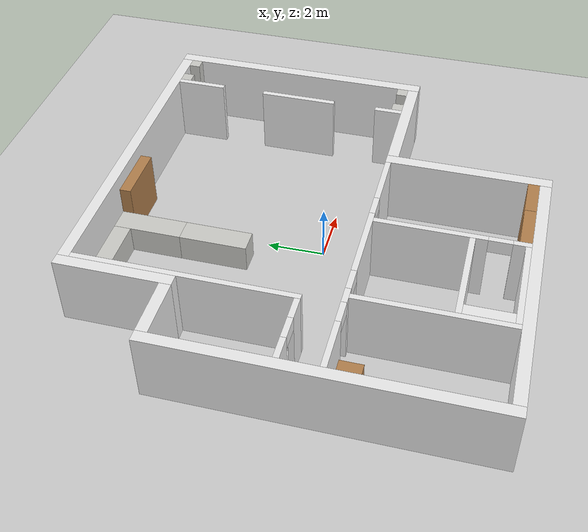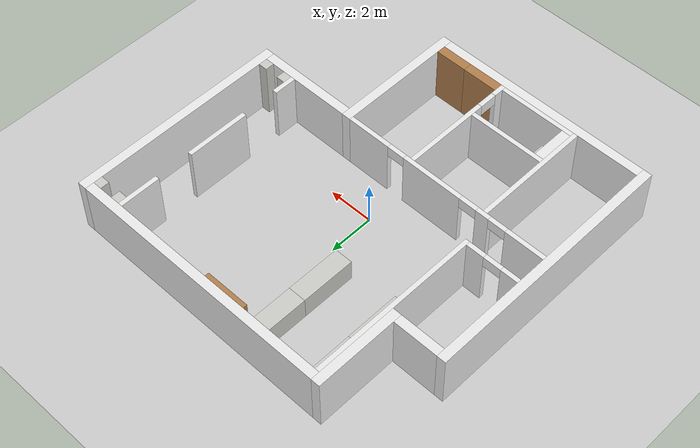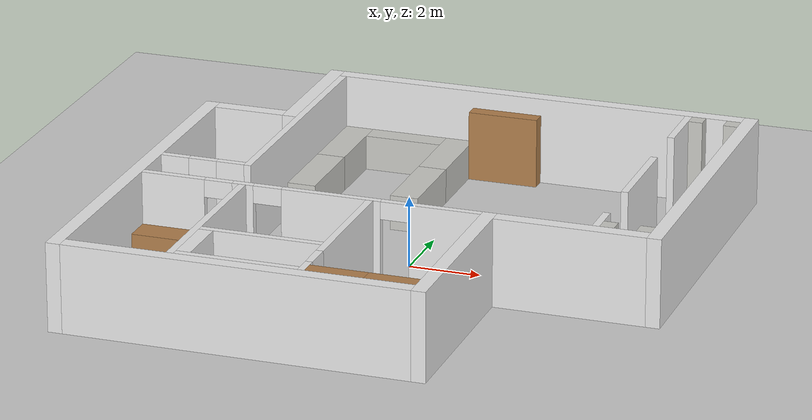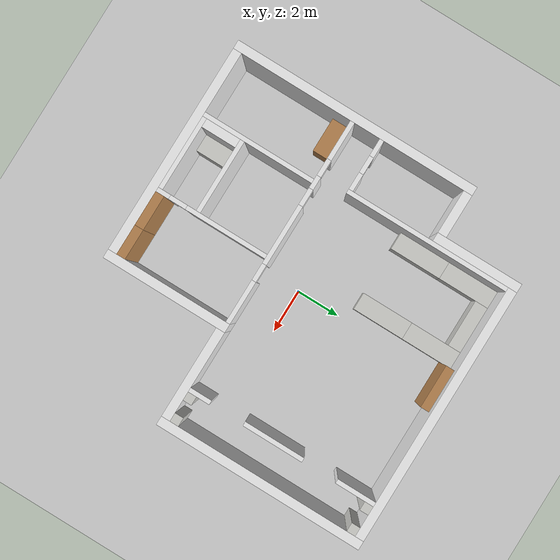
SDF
<sdf version="1.7">
 <world name="default">
  <light name="sun" type="directional">
   <pose>0 0 10 0 -0 0</pose>
   <diffuse>0.8 0.8 0.8 1</diffuse>
   <specular>0.2 0.2 0.2 1</specular>
   <attenuation>
    <range>1000</range>
    <constant>0.9</constant>
    <linear>0.01</linear>
    <quadratic>0.001</quadratic>
   </attenuation>
   <direction>-0.5 0.1 -0.9</direction>
   <spot><inner_angle>0</inner_angle><outer_angle>0</outer_angle><falloff>0</falloff></spot>
  </light>
  <model name="actor1_collision">
   <static>true</static>
   <link name="wall_link">
    <collision name="collision">
     <geometry><cylinder><radius>0.25</radius><length>2.0</length></cylinder></geometry>
    </collision>
    <visual name="visual">
     <geometry><cylinder><radius>0.25</radius><length>2.0</length></cylinder></geometry>
     <material>
      <ambient>1 0 0 1</ambient>
      <diffuse>1 0 0 1</diffuse>
      <specular>0 0 0 1</specular>
      <emissive>0 0 0 1</emissive>
     </material>
     <transparency>1</transparency>
    </visual>
    <inertial><mass>10.0</mass></inertial>
   </link>
  </model>
  <model name="ground_plane">
   <static>1</static>
   <link name="link">
    <collision name="collision">
     <geometry><plane><normal>0 0 1</normal><size>100 100</size></plane></geometry>
     <surface><friction><ode><mu>100</mu><mu2>50</mu2></ode></friction></surface>
    </collision>
    <visual name="visual">
     <cast_shadows>0</cast_shadows>
     <geometry><plane><normal>0 0 1</normal><size>100 100</size></plane></geometry>
     <material>
      <script><uri>file://media/materials/scripts/gazebo.material</uri><name>Gazebo/Grey</name></script>
     </material>
    </visual>
   </link>
  </model>
  <gravity>0 0 -9.8</gravity>
  <magnetic_field>6e-06 2.3e-05 -4.2e-05</magnetic_field>
  <atmosphere type="adiabatic"/>
  <physics type="ode">
   <max_step_size>0.001</max_step_size>
   <real_time_factor>1</real_time_factor>
   <real_time_update_rate>1000</real_time_update_rate>
  </physics>
  <scene><ambient>0.4 0.4 0.4 1</ambient><background>0.7 0.7 0.7 1</background><shadows>1</shadows></scene>
  <audio><device>default</device></audio>
  <spherical_coordinates>
   <surface_model>EARTH_WGS84</surface_model>
   <latitude_deg>0</latitude_deg>
   <longitude_deg>0</longitude_deg>
   <elevation>0</elevation>
   <heading_deg>0</heading_deg>
  </spherical_coordinates>
  <model name="beta_map2">
   <link name="Wall_0">
    <pose>-7.2 -1.7 0 0 -0 0</pose>
    <collision name="Wall_0_Collision">
     <pose>0 0 1.25 0 -0 0</pose>
     <geometry><box><size>0.4 11.4 2.5</size></box></geometry>
    </collision>
    <visual name="Wall_0_Visual">
     <pose>0 0 1.25 0 -0 0</pose>
     <geometry><box><size>0.4 11.4 2.5</size></box></geometry>
     <material>
      <script><uri>file://media/materials/scripts/gazebo.material</uri><name>Gazebo/White</name></script>
      <ambient>1 1 1 1</ambient>
     </material>
     <meta><layer>0</layer></meta>
    </visual>
   </link>
   <link name="Wall_1">
    <pose>-4.8 5.6 0 0 -0 0</pose>
    <collision name="Wall_1_Collision">
     <pose>0 0 1.25 0 -0 0</pose>
     <geometry><box><size>0.4 4 2.5</size></box></geometry>
    </collision>
    <visual name="Wall_1_Visual">
     <pose>0 0 1.25 0 -0 0</pose>
     <geometry><box><size>0.4 4 2.5</size></box></geometry>
     <material>
      <script><uri>file://media/materials/scripts/gazebo.material</uri><name>Gazebo/White</name></script>
      <ambient>1 1 1 1</ambient>
     </material>
     <meta><layer>0</layer></meta>
    </visual>
   </link>
   <link name="Wall_2">
    <pose>2.8 -4.5 0 0 -0 0</pose>
    <collision name="Wall_2_Collision">
     <pose>0 0 1.25 0 -0 0</pose>
     <geometry><box><size>0.4 5.8 2.5</size></box></geometry>
    </collision>
    <visual name="Wall_2_Visual">
     <pose>0 0 1.25 0 -0 0</pose>
     <geometry><box><size>0.4 5.8 2.5</size></box></geometry>
     <material>
      <script><uri>file://media/materials/scripts/gazebo.material</uri><name>Gazebo/White</name></script>
      <ambient>1 1 1 1</ambient>
     </material>
     <meta><layer>0</layer></meta>
    </visual>
   </link>
   <link name="Wall_3">
    <pose>7.4 2.8 0 0 -0 0</pose>
    <collision name="Wall_3_Collision">
     <pose>0 0 1.25 0 -0 0</pose>
     <geometry><box><size>0.4 9.6 2.5</size></box></geometry>
    </collision>
    <visual name="Wall_3_Visual">
     <pose>0 0 1.25 0 -0 0</pose>
     <geometry><box><size>0.4 9.6 2.5</size></box></geometry>
     <material>
      <script><uri>file://media/materials/scripts/gazebo.material</uri><name>Gazebo/White</name></script>
      <ambient>1 1 1 1</ambient>
     </material>
     <meta><layer>0</layer></meta>
    </visual>
   </link>
   <link name="Wall_4">
    <pose>1.3 7.4 0 0 -0 0</pose>
    <collision name="Wall_4_Collision">
     <pose>0 0 1.25 0 -0 0</pose>
     <geometry><box><size>11.8 0.4 2.5</size></box></geometry>
    </collision>
    <visual name="Wall_4_Visual">
     <pose>0 0 1.25 0 -0 0</pose>
     <geometry><box><size>11.8 0.4 2.5</size></box></geometry>
     <material>
      <script><uri>file://media/materials/scripts/gazebo.material</uri><name>Gazebo/White</name></script>
      <ambient>1 1 1 1</ambient>
     </material>
     <meta><layer>0</layer></meta>
    </visual>
   </link>
   <link name="Wall_5">
    <pose>-2.2 -7.2 0 0 -0 0</pose>
    <collision name="Wall_5_Collision">
     <pose>0 0 1.25 0 -0 0</pose>
     <geometry><box><size>9.6 0.4 2.5</size></box></geometry>
    </collision>
    <visual name="Wall_5_Visual">
     <pose>0 0 1.25 0 -0 0</pose>
     <geometry><box><size>9.6 0.4 2.5</size></box></geometry>
     <material>
      <script><uri>file://media/materials/scripts/gazebo.material</uri><name>Gazebo/White</name></script>
      <ambient>1 1 1 1</ambient>
     </material>
     <meta><layer>0</layer></meta>
    </visual>
   </link>
   <link name="Wall_6">
    <pose>-6 3.8 0 0 -0 0</pose>
    <collision name="Wall_6_Collision">
     <pose>0 0 1.25 0 -0 0</pose>
     <geometry><box><size>2 0.4 2.5</size></box></geometry>
    </collision>
    <visual name="Wall_6_Visual">
     <pose>0 0 1.25 0 -0 0</pose>
     <geometry><box><size>2 0.4 2.5</size></box></geometry>
     <material>
      <script><uri>file://media/materials/scripts/gazebo.material</uri><name>Gazebo/White</name></script>
      <ambient>1 1 1 1</ambient>
     </material>
     <meta><layer>0</layer></meta>
    </visual>
   </link>
   <link name="Wall_7">
    <pose>5.1 -1.8 0 0 -0 0</pose>
    <collision name="Wall_7_Collision">
     <pose>0 0 1.25 0 -0 0</pose>
     <geometry><box><size>4.2 0.4 2.5</size></box></geometry>
    </collision>
    <visual name="Wall_7_Visual">
     <pose>0 0 1.25 0 -0 0</pose>
     <geometry><box><size>4.2 0.4 2.5</size></box></geometry>
     <material>
      <script><uri>file://media/materials/scripts/gazebo.material</uri><name>Gazebo/White</name></script>
      <ambient>1 1 1 1</ambient>
     </material>
     <meta><layer>0</layer></meta>
    </visual>
   </link>
   <link name="Wall_8">
    <pose>7 -1.4 0 0 -0 0</pose>
    <collision name="Wall_8_Collision">
     <pose>0 0 1.25 0 -0 0</pose>
     <geometry><box><size>0.4 0.4 2.5</size></box></geometry>
    </collision>
    <visual name="Wall_8_Visual">
     <pose>0 0 1.25 0 -0 0</pose>
     <geometry><box><size>0.4 0.4 2.5</size></box></geometry>
     <material>
      <script><uri>file://media/materials/scripts/gazebo.material</uri><name>Gazebo/CeilingTiled</name></script>
      <ambient>0.5 0.5 0.5 1</ambient>
     </material>
     <meta><layer>0</layer></meta>
    </visual>
   </link>
   <link name="Wall_9">
    <pose>6 -1.4 0 0 -0 0</pose>
    <collision name="Wall_9_Collision">
     <pose>0 0 1.25 0 -0 0</pose>
     <geometry><box><size>0.4 0.4 2.5</size></box></geometry>
    </collision>
    <visual name="Wall_9_Visual">
     <pose>0 0 1.25 0 -0 0</pose>
     <geometry><box><size>0.4 0.4 2.5</size></box></geometry>
     <material>
      <script><uri>file://media/materials/scripts/gazebo.material</uri><name>Gazebo/CeilingTiled</name></script>
      <ambient>0.5 0.5 0.5 1</ambient>
     </material>
     <meta><layer>0</layer></meta>
    </visual>
   </link>
   <link name="Wall_10">
    <pose>5.7 -1.1 0 0 -0 0</pose>
    <collision name="Wall_10_Collision">
     <pose>0 0 1.25 0 -0 0</pose>
     <geometry><box><size>0.2 1 2.5</size></box></geometry>
    </collision>
    <visual name="Wall_10_Visual">
     <pose>0 0 1.25 0 -0 0</pose>
     <geometry><box><size>0.2 1 2.5</size></box></geometry>
     <material>
      <script><uri>file://media/materials/scripts/gazebo.material</uri><name>Gazebo/White</name></script>
      <ambient>1 1 1 1</ambient>
     </material>
     <meta><layer>0</layer></meta>
    </visual>
   </link>
   <link name="Wall_11">
    <pose>5.7 2.4 0 0 -0 0</pose>
    <collision name="Wall_11_Collision">
     <pose>0 0 1.25 0 -0 0</pose>
     <geometry><box><size>0.2 2.8 2.5</size></box></geometry>
    </collision>
    <visual name="Wall_11_Visual">
     <pose>0 0 1.25 0 -0 0</pose>
     <geometry><box><size>0.2 2.8 2.5</size></box></geometry>
     <material>
      <script><uri>file://media/materials/scripts/gazebo.material</uri><name>Gazebo/White</name></script>
      <ambient>1 1 1 1</ambient>
     </material>
     <meta><layer>0</layer></meta>
    </visual>
   </link>
   <link name="Wall_12">
    <pose>5.7 6.3 0 0 -0 0</pose>
    <collision name="Wall_12_Collision">
     <pose>0 0 1.25 0 -0 0</pose>
     <geometry><box><size>0.2 1.8 2.5</size></box></geometry>
    </collision>
    <visual name="Wall_12_Visual">
     <pose>0 0 1.25 0 -0 0</pose>
     <geometry><box><size>0.2 1.8 2.5</size></box></geometry>
     <material>
      <script><uri>file://media/materials/scripts/gazebo.material</uri><name>Gazebo/White</name></script>
      <ambient>1 1 1 1</ambient>
     </material>
     <meta><layer>0</layer></meta>
    </visual>
   </link>
   <link name="Wall_13">
    <pose>6 7 0 0 -0 0</pose>
    <collision name="Wall_13_Collision">
     <pose>0 0 1.25 0 -0 0</pose>
     <geometry><box><size>0.4 0.4 2.5</size></box></geometry>
    </collision>
    <visual name="Wall_13_Visual">
     <pose>0 0 1.25 0 -0 0</pose>
     <geometry><box><size>0.4 0.4 2.5</size></box></geometry>
     <material>
      <script><uri>file://media/materials/scripts/gazebo.material</uri><name>Gazebo/CeilingTiled</name></script>
      <ambient>0.5 0.5 0.5 1</ambient>
     </material>
     <meta><layer>0</layer></meta>
    </visual>
   </link>
   <link name="Wall_14">
    <pose>7 7 0 0 -0 0</pose>
    <collision name="Wall_14_Collision">
     <pose>0 0 1.25 0 -0 0</pose>
     <geometry><box><size>0.4 0.4 2.5</size></box></geometry>
    </collision>
    <visual name="Wall_14_Visual">
     <pose>0 0 1.25 0 -0 0</pose>
     <geometry><box><size>0.4 0.4 2.5</size></box></geometry>
     <material>
      <script><uri>file://media/materials/scripts/gazebo.material</uri><name>Gazebo/CeilingTiled</name></script>
      <ambient>0.5 0.5 0.5 1</ambient>
     </material>
     <meta><layer>0</layer></meta>
    </visual>
   </link>
   <link name="Wall_15">
    <pose>-6.6 -0.3 0 0 -0 0</pose>
    <collision name="Wall_15_Collision">
     <pose>0 0 1.25 0 -0 0</pose>
     <geometry><box><size>0.8 0.2 2.5</size></box></geometry>
    </collision>
    <visual name="Wall_15_Visual">
     <pose>0 0 1.25 0 -0 0</pose>
     <geometry><box><size>0.8 0.2 2.5</size></box></geometry>
     <material>
      <script><uri>file://media/materials/scripts/gazebo.material</uri><name>Gazebo/White</name></script>
      <ambient>1 1 1 1</ambient>
     </material>
     <meta><layer>0</layer></meta>
    </visual>
   </link>
   <link name="Wall_16">
    <pose>-5 -0.3 0 0 -0 0</pose>
    <collision name="Wall_16_Collision">
     <pose>0 0 1.25 0 -0 0</pose>
     <geometry><box><size>0.8 0.2 2.5</size></box></geometry>
    </collision>
    <visual name="Wall_16_Visual">
     <pose>0 0 1.25 0 -0 0</pose>
     <geometry><box><size>0.8 0.2 2.5</size></box></geometry>
     <material>
      <script><uri>file://media/materials/scripts/gazebo.material</uri><name>Gazebo/White</name></script>
      <ambient>1 1 1 1</ambient>
     </material>
     <meta><layer>0</layer></meta>
    </visual>
   </link>
   <link name="Wall_17">
    <pose>-4.5 3.4 0 0 -0 0</pose>
    <collision name="Wall_17_Collision">
     <pose>0 0 1.25 0 -0 0</pose>
     <geometry><box><size>0.2 7.6 2.5</size></box></geometry>
    </collision>
    <visual name="Wall_17_Visual">
     <pose>0 0 1.25 0 -0 0</pose>
     <geometry><box><size>0.2 7.6 2.5</size></box></geometry>
     <material>
      <script><uri>file://media/materials/scripts/gazebo.material</uri><name>Gazebo/White</name></script>
      <ambient>1 1 1 1</ambient>
     </material>
     <meta><layer>0</layer></meta>
    </visual>
   </link>
   <link name="Wall_18">
    <pose>-4.1 -1.7 0 0 -0 0</pose>
    <collision name="Wall_18_Collision">
     <pose>0 0 1.25 0 -0 0</pose>
     <geometry><box><size>0.6 0.2 2.5</size></box></geometry>
    </collision>
    <visual name="Wall_18_Visual">
     <pose>0 0 1.25 0 -0 0</pose>
     <geometry><box><size>0.6 0.2 2.5</size></box></geometry>
     <material>
      <script><uri>file://media/materials/scripts/gazebo.material</uri><name>Gazebo/White</name></script>
      <ambient>1 1 1 1</ambient>
     </material>
     <meta><layer>0</layer></meta>
    </visual>
   </link>
   <link name="Wall_19">
    <pose>-1.6 -1.7 0 0 -0 0</pose>
    <collision name="Wall_19_Collision">
     <pose>0 0 1.25 0 -0 0</pose>
     <geometry><box><size>2.8 0.2 2.5</size></box></geometry>
    </collision>
    <visual name="Wall_19_Visual">
     <pose>0 0 1.25 0 -0 0</pose>
     <geometry><box><size>2.8 0.2 2.5</size></box></geometry>
     <material>
      <script><uri>file://media/materials/scripts/gazebo.material</uri><name>Gazebo/White</name></script>
      <ambient>1 1 1 1</ambient>
     </material>
     <meta><layer>0</layer></meta>
    </visual>
   </link>
   <link name="Wall_20">
    <pose>1.6 -1.7 0 0 -0 0</pose>
    <collision name="Wall_20_Collision">
     <pose>0 0 1.25 0 -0 0</pose>
     <geometry><box><size>2 0.2 2.5</size></box></geometry>
    </collision>
    <visual name="Wall_20_Visual">
     <pose>0 0 1.25 0 -0 0</pose>
     <geometry><box><size>2 0.2 2.5</size></box></geometry>
     <material>
      <script><uri>file://media/materials/scripts/gazebo.material</uri><name>Gazebo/White</name></script>
      <ambient>1 1 1 1</ambient>
     </material>
     <meta><layer>0</layer></meta>
    </visual>
   </link>
   <link name="Wall_21">
    <pose>-0.5 -3.7 0 0 -0 0</pose>
    <collision name="Wall_21_Collision">
     <pose>0 0 1.25 0 -0 0</pose>
     <geometry><box><size>0.2 3.8 2.5</size></box></geometry>
    </collision>
    <visual name="Wall_21_Visual">
     <pose>0 0 1.25 0 -0 0</pose>
     <geometry><box><size>0.2 3.8 2.5</size></box></geometry>
     <material>
      <script><uri>file://media/materials/scripts/gazebo.material</uri><name>Gazebo/White</name></script>
      <ambient>1 1 1 1</ambient>
     </material>
     <meta><layer>0</layer></meta>
    </visual>
   </link>
   <link name="Wall_22">
    <pose>-0.5 -6.7 0 0 -0 0</pose>
    <collision name="Wall_22_Collision">
     <pose>0 0 1.25 0 -0 0</pose>
     <geometry><box><size>0.2 0.6 2.5</size></box></geometry>
    </collision>
    <visual name="Wall_22_Visual">
     <pose>0 0 1.25 0 -0 0</pose>
     <geometry><box><size>0.2 0.6 2.5</size></box></geometry>
     <material>
      <script><uri>file://media/materials/scripts/gazebo.material</uri><name>Gazebo/White</name></script>
      <ambient>1 1 1 1</ambient>
     </material>
     <meta><layer>0</layer></meta>
    </visual>
   </link>
   <link name="Wall_23">
    <pose>-4.1 -4.4 0 0 -0 0</pose>
    <collision name="Wall_23_Collision">
     <pose>0 0 1.25 0 -0 0</pose>
     <geometry><box><size>0.2 5.2 2.5</size></box></geometry>
    </collision>
    <visual name="Wall_23_Visual">
     <pose>0 0 1.25 0 -0 0</pose>
     <geometry><box><size>0.2 5.2 2.5</size></box></geometry>
     <material>
      <script><uri>file://media/materials/scripts/gazebo.material</uri><name>Gazebo/White</name></script>
      <ambient>1 1 1 1</ambient>
     </material>
     <meta><layer>0</layer></meta>
    </visual>
   </link>
   <link name="Wall_24">
    <pose>-2.3 -5.1 0 0 -0 0</pose>
    <collision name="Wall_24_Collision">
     <pose>0 0 1.25 0 -0 0</pose>
     <geometry><box><size>3.4 0.2 2.5</size></box></geometry>
    </collision>
    <visual name="Wall_24_Visual">
     <pose>0 0 1.25 0 -0 0</pose>
     <geometry><box><size>3.4 0.2 2.5</size></box></geometry>
     <material>
      <script><uri>file://media/materials/scripts/gazebo.material</uri><name>Gazebo/White</name></script>
      <ambient>1 1 1 1</ambient>
     </material>
     <meta><layer>0</layer></meta>
    </visual>
   </link>
   <link name="Wall_25">
    <pose>-2.3 -6.9 0 0 -0 0</pose>
    <collision name="Wall_25_Collision">
     <pose>0 0 1.25 0 -0 0</pose>
     <geometry><box><size>3.4 0.2 2.5</size></box></geometry>
    </collision>
    <visual name="Wall_25_Visual">
     <pose>0 0 1.25 0 -0 0</pose>
     <geometry><box><size>3.4 0.2 2.5</size></box></geometry>
     <material>
      <script><uri>file://media/materials/scripts/gazebo.material</uri><name>Gazebo/White</name></script>
      <ambient>1 1 1 1</ambient>
     </material>
     <meta><layer>0</layer></meta>
    </visual>
   </link>
   <link name="Wall_26">
    <pose>-6.1 -1.7 0 0 -0 0</pose>
    <collision name="Wall_26_Collision">
     <pose>0 0 1.25 0 -0 0</pose>
     <geometry><box><size>1.8 0.2 2.5</size></box></geometry>
    </collision>
    <visual name="Wall_26_Visual">
     <pose>0 0 1.25 0 -0 0</pose>
     <geometry><box><size>1.8 0.2 2.5</size></box></geometry>
     <material>
      <script><uri>file://media/materials/scripts/gazebo.material</uri><name>Gazebo/White</name></script>
      <ambient>1 1 1 1</ambient>
     </material>
     <meta><layer>0</layer></meta>
    </visual>
   </link>
   <link name="Wall_27">
    <pose>-6.2 -2.2 0 0 -0 0</pose>
    <collision name="Wall_27_Collision">
     <pose>0 0 0.5 0 -0 0</pose>
     <geometry><box><size>1.6 0.8 1</size></box></geometry>
    </collision>
    <visual name="Wall_27_Visual">
     <pose>0 0 0.5 0 -0 0</pose>
     <geometry><box><size>1.6 0.8 1</size></box></geometry>
     <material>
      <script><uri>file://media/materials/scripts/gazebo.material</uri><name>Gazebo/WoodFloor</name></script>
      <ambient>0.5 0.5 0.5 1</ambient>
     </material>
     <meta><layer>0</layer></meta>
    </visual>
   </link>
   <link name="Wall_28">
    <pose>-3.2 -6 0 0 -0 0</pose>
    <collision name="Wall_28_Collision">
     <pose>0 0 0.5 0 -0 0</pose>
     <geometry><box><size>0.8 1.6 1</size></box></geometry>
    </collision>
    <visual name="Wall_28_Visual">
     <pose>0 0 0.5 0 -0 0</pose>
     <geometry><box><size>0.8 1.6 1</size></box></geometry>
     <material>
      <script><uri>file://media/materials/scripts/gazebo.material</uri><name>Gazebo/CeilingTiled</name></script>
      <ambient>0.5 0.5 0.5 1</ambient>
     </material>
     <meta><layer>0</layer></meta>
    </visual>
   </link>
   <link name="Wall_29">
    <pose>-3.8 -6 0 0 -0 0</pose>
    <collision name="Wall_29_Collision">
     <pose>0 0 1.25 0 -0 0</pose>
     <geometry><box><size>0.4 1.6 2.5</size></box></geometry>
    </collision>
    <visual name="Wall_29_Visual">
     <pose>0 0 1.25 0 -0 0</pose>
     <geometry><box><size>0.4 1.6 2.5</size></box></geometry>
     <material>
      <script><uri>file://media/materials/scripts/gazebo.material</uri><name>Gazebo/White</name></script>
      <ambient>1 1 1 1</ambient>
     </material>
     <meta><layer>0</layer></meta>
    </visual>
   </link>
   <link name="Wall_30">
    <pose>-1 3.6 0 0 -0 0</pose>
    <collision name="Wall_30_Collision">
     <pose>0 0 0.5 0 -0 0</pose>
     <geometry><box><size>0.8 2.4 1</size></box></geometry>
    </collision>
    <visual name="Wall_30_Visual">
     <pose>0 0 0.5 0 -0 0</pose>
     <geometry><box><size>0.8 2.4 1</size></box></geometry>
     <material>
      <script><uri>file://media/materials/scripts/gazebo.material</uri><name>Gazebo/CeilingTiled</name></script>
      <ambient>0.5 0.5 0.5 1</ambient>
     </material>
     <meta><layer>0</layer></meta>
    </visual>
   </link>
   <link name="Wall_31">
    <pose>-4 3.6 0 0 -0 0</pose>
    <collision name="Wall_31_Collision">
     <pose>0 0 0.5 0 -0 0</pose>
     <geometry><box><size>0.8 2.4 1</size></box></geometry>
    </collision>
    <visual name="Wall_31_Visual">
     <pose>0 0 0.5 0 -0 0</pose>
     <geometry><box><size>0.8 2.4 1</size></box></geometry>
     <material>
      <script><uri>file://media/materials/scripts/gazebo.material</uri><name>Gazebo/CeilingTiled</name></script>
      <ambient>0.5 0.5 0.5 1</ambient>
     </material>
     <meta><layer>0</layer></meta>
    </visual>
   </link>
   <link name="Wall_32">
    <pose>-4 6 0 0 -0 0</pose>
    <collision name="Wall_32_Collision">
     <pose>0 0 0.5 0 -0 0</pose>
     <geometry><box><size>0.8 2.4 1</size></box></geometry>
    </collision>
    <visual name="Wall_32_Visual">
     <pose>0 0 0.5 0 -0 0</pose>
     <geometry><box><size>0.8 2.4 1</size></box></geometry>
     <material>
      <script><uri>file://media/materials/scripts/gazebo.material</uri><name>Gazebo/CeilingTiled</name></script>
      <ambient>0.5 0.5 0.5 1</ambient>
     </material>
     <meta><layer>0</layer></meta>
    </visual>
   </link>
   <link name="Wall_33">
    <pose>-1 6 0 0 -0 0</pose>
    <collision name="Wall_33_Collision">
     <pose>0 0 0.5 0 -0 0</pose>
     <geometry><box><size>0.8 2.4 1</size></box></geometry>
    </collision>
    <visual name="Wall_33_Visual">
     <pose>0 0 0.5 0 -0 0</pose>
     <geometry><box><size>0.8 2.4 1</size></box></geometry>
     <material>
      <script><uri>file://media/materials/scripts/gazebo.material</uri><name>Gazebo/CeilingTiled</name></script>
      <ambient>0.5 0.5 0.5 1</ambient>
     </material>
     <meta><layer>0</layer></meta>
    </visual>
   </link>
   <link name="Wall_34">
    <pose>-2.5 6.9 0 0 -0 0</pose>
    <collision name="Wall_34_Collision">
     <pose>0 0 0.5 0 -0 0</pose>
     <geometry><box><size>2.2 0.6 1</size></box></geometry>
    </collision>
    <visual name="Wall_34_Visual">
     <pose>0 0 0.5 0 -0 0</pose>
     <geometry><box><size>2.2 0.6 1</size></box></geometry>
     <material>
      <script><uri>file://media/materials/scripts/gazebo.material</uri><name>Gazebo/CeilingTiled</name></script>
      <ambient>0.5 0.5 0.5 1</ambient>
     </material>
     <meta><layer>0</layer></meta>
    </visual>
   </link>
   <link name="Wall_35">
    <pose>0.4 7 0 0 -0 0</pose>
    <collision name="Wall_35_Collision">
     <pose>0 0 1 0 -0 0</pose>
     <geometry><box><size>2 0.4 2</size></box></geometry>
    </collision>
    <visual name="Wall_35_Visual">
     <pose>0 0 1 0 -0 0</pose>
     <geometry><box><size>2 0.4 2</size></box></geometry>
     <material>
      <script><uri>file://media/materials/scripts/gazebo.material</uri><name>Gazebo/WoodFloor</name></script>
      <ambient>0.5 0.5 0.5 1</ambient>
     </material>
     <meta><layer>0</layer></meta>
    </visual>
   </link>
   <link name="Wall_36">
    <pose>0.4 -6.8 0 0 -0 0</pose>
    <collision name="Wall_36_Collision">
     <pose>0 0 1.25 0 -0 0</pose>
     <geometry><box><size>1.6 0.4 2.5</size></box></geometry>
    </collision>
    <visual name="Wall_36_Visual">
     <pose>0 0 1.25 0 -0 0</pose>
     <geometry><box><size>1.6 0.4 2.5</size></box></geometry>
     <material>
      <script><uri>file://media/materials/scripts/gazebo.material</uri><name>Gazebo/WoodFloor</name></script>
      <ambient>0.5 0.5 0.5 1</ambient>
     </material>
     <meta><layer>0</layer></meta>
    </visual>
   </link>
   <link name="Wall_37">
    <pose>1.9 -6.8 0 0 -0 0</pose>
    <collision name="Wall_37_Collision">
     <pose>0 0 1.25 0 -0 0</pose>
     <geometry><box><size>1.4 0.4 2.5</size></box></geometry>
    </collision>
    <visual name="Wall_37_Visual">
     <pose>0 0 1.25 0 -0 0</pose>
     <geometry><box><size>1.4 0.4 2.5</size></box></geometry>
     <material>
      <script><uri>file://media/materials/scripts/gazebo.material</uri><name>Gazebo/WoodFloor</name></script>
      <ambient>0.5 0.5 0.5 1</ambient>
     </material>
     <meta><layer>0</layer></meta>
    </visual>
   </link>
   <link name="Doorway_0">
    <pose>-5.8 -0.3 0 0 -0 0</pose>
    <collision name="Doorway_0_Collision">
     <pose>0 0 2.25 0 -0 0</pose>
     <geometry><box><size>0.8 0.2 0.5</size></box></geometry>
    </collision>
    <visual name="Doorway_0_Visual">
     <pose>0 0 2.25 0 -0 0</pose>
     <geometry><box><size>0.8 0.2 0.5</size></box></geometry>
     <material>
      <script><uri>file://media/materials/scripts/gazebo.material</uri><name>Gazebo/White</name></script>
      <ambient>1 1 1 1</ambient>
     </material>
     <meta><layer>0</layer></meta>
    </visual>
   </link>
   <link name="Doorway_1">
    <pose>-4.8 -1.7 0 0 -0 0</pose>
    <collision name="Doorway_1_Collision">
     <pose>0 0 2.25 0 -0 0</pose>
     <geometry><box><size>0.8 0.2 0.5</size></box></geometry>
    </collision>
    <visual name="Doorway_1_Visual">
     <pose>0 0 2.25 0 -0 0</pose>
     <geometry><box><size>0.8 0.2 0.5</size></box></geometry>
     <material>
      <script><uri>file://media/materials/scripts/gazebo.material</uri><name>Gazebo/White</name></script>
      <ambient>1 1 1 1</ambient>
     </material>
     <meta><layer>0</layer></meta>
    </visual>
   </link>
   <link name="Doorway_2">
    <pose>-3.4 -1.7 0 0 -0 0</pose>
    <collision name="Doorway_2_Collision">
     <pose>0 0 2.25 0 -0 0</pose>
     <geometry><box><size>0.8 0.2 0.5</size></box></geometry>
    </collision>
    <visual name="Doorway_2_Visual">
     <pose>0 0 2.25 0 -0 0</pose>
     <geometry><box><size>0.8 0.2 0.5</size></box></geometry>
     <material>
      <script><uri>file://media/materials/scripts/gazebo.material</uri><name>Gazebo/White</name></script>
      <ambient>1 1 1 1</ambient>
     </material>
     <meta><layer>0</layer></meta>
    </visual>
   </link>
   <link name="Doorway_3">
    <pose>0.2 -1.7 0 0 -0 0</pose>
    <collision name="Doorway_3_Collision">
     <pose>0 0 2.25 0 -0 0</pose>
     <geometry><box><size>0.8 0.2 0.5</size></box></geometry>
    </collision>
    <visual name="Doorway_3_Visual">
     <pose>0 0 2.25 0 -0 0</pose>
     <geometry><box><size>0.8 0.2 0.5</size></box></geometry>
     <material>
      <script><uri>file://media/materials/scripts/gazebo.material</uri><name>Gazebo/White</name></script>
      <ambient>1 1 1 1</ambient>
     </material>
     <meta><layer>0</layer></meta>
    </visual>
   </link>
   <link name="Doorway_4">
    <pose>-0.5 -6 0 0 -0 0</pose>
    <collision name="Doorway_4_Collision">
     <pose>0 0 2.25 0 -0 0</pose>
     <geometry><box><size>0.2 0.8 0.5</size></box></geometry>
    </collision>
    <visual name="Doorway_4_Visual">
     <pose>0 0 2.25 0 -0 0</pose>
     <geometry><box><size>0.2 0.8 0.5</size></box></geometry>
     <material>
      <script><uri>file://media/materials/scripts/gazebo.material</uri><name>Gazebo/White</name></script>
      <ambient>1 1 1 1</ambient>
     </material>
     <meta><layer>0</layer></meta>
    </visual>
   </link>
   <static>1</static>
  </model>
  <plugin name="gazebo_ros_state" filename="libgazebo_ros_state.so">
   <ros><namespace>/gazebo</namespace></ros>
   <update_rate>10</update_rate>
  </plugin>
 </world>
</sdf>
